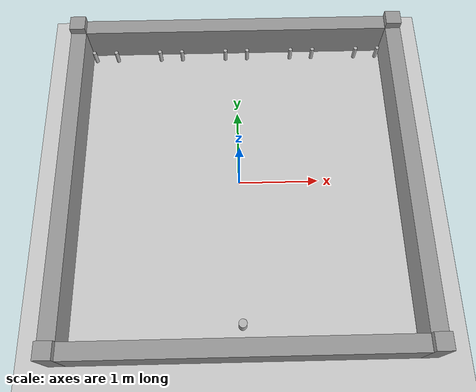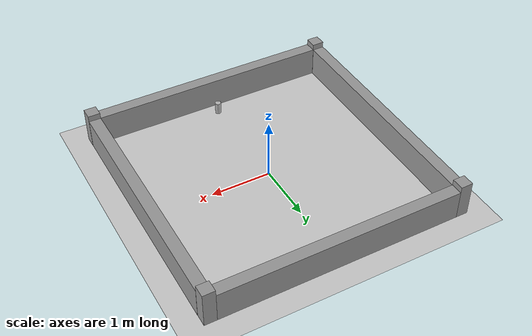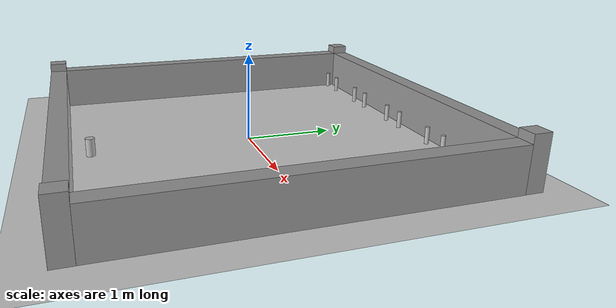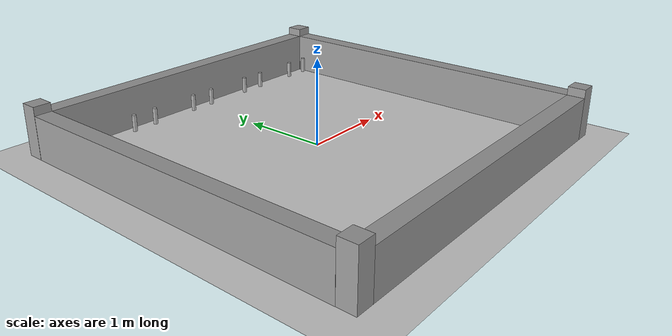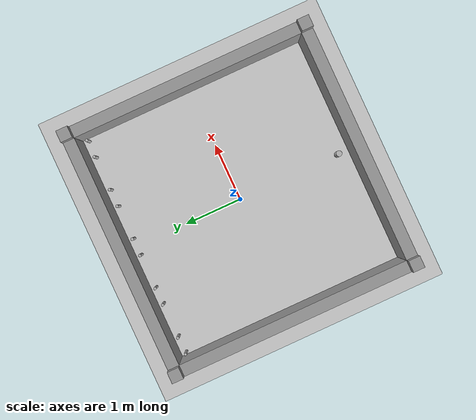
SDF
<?xml version="1.0" ?>

<sdf version="1.5">
	<world name="default">

		<!-- export this: export GAZEBO_MODEL_PATH=~/botler/catkin_ws/src/botler_sim/models/:$GAZEBO_MODEL_PATH
 -->

		<!-- A global light source -->
		<include>
			<uri>model://sun</uri>
			<pose>0 0 0 0 0 0</pose>
		</include>

		<light type="point" name="point">
      <pose>0 0 1 0 0 0</pose>
      <diffuse>1 1 1 1</diffuse>
      <specular>.1 .1 .1 1</specular>
      <attenuation>
        <range>20</range>
        <linear>0.2</linear>
        <constant>0.8</constant>
        <quadratic>0.01</quadratic>
      </attenuation>
      <cast_shadows>false</cast_shadows>
    </light>

		<!-- A ground plane -->
		<include>
			<uri>model://ground_plane</uri>
		</include>

		<include>
			<uri>model://wall</uri>
			<name>positive_y_wall</name>
			<static>true</static>
			<pose>0 2.1 0.25 0 0 0</pose>
		</include>

		<include>
			<uri>model://wall</uri>
			<name>negative_y_wall</name>
			<static>true</static>
			<pose>0 -2.1 0.25 0 0 0</pose>
		</include>

		<include>
			<uri>model://wall</uri>
			<name>positive_x_wall</name>
			<static>true</static>
			<pose>2.1 0 0.25 0 0 1.57</pose>
		</include>

		<include>
			<uri>model://wall</uri>
			<name>negative_x_wall</name>
			<static>true</static>
			<pose>-2.1 0 0.25 0 0 1.57</pose>
		</include>

		<include>
			<uri>model://corner</uri>
			<name>positive_x_positive_y_corner</name>
			<static>true</static>
			<pose>2.1 2.1 0.3 0 0 0</pose>
		</include>

		<include>
			<uri>model://corner</uri>
			<name>positive_x_negative_y_corner</name>
			<static>true</static>
			<pose>2.1 -2.1 0.3 0 0 0</pose>
		</include>

		<include>
			<uri>model://corner</uri>
			<name>negative_x_positive_y_corner</name>
			<static>true</static>
			<pose>-2.1 2.1 0.3 0 0 0</pose>
		</include>

		<include>
			<uri>model://corner</uri>
			<name>negative_x_negative_y_corner</name>
			<static>true</static>
			<pose>-2.1 -2.1 0.3 0 0 0</pose>
		</include>

		<include>
			<uri>model://bottles/beersel_blue</uri>
			<name>test_bottle1_1</name>
			<static>true</static>
			<pose>-1.95 1.9 0 0 0 0</pose>
		</include>

		<include>
			<uri>model://bottles/beersel_red</uri>
			<name>test_bottle_2</name>
			<static>true</static>
			<pose>-1.65 1.9 0 0 0 0</pose>
		</include>

		<include>
			<uri>model://bottles/duvel_blue</uri>
			<name>test_bottle_3</name>
			<static>true</static>
			<pose>-1.05 1.9 0 0 0 0</pose>
		</include>

		<include>
			<uri>model://bottles/duvel_red</uri>
			<name>test_bottle_4</name>
			<static>true</static>
			<pose>-0.75 1.9 0 0 0 0</pose>
		</include>

		<include>
			<uri>model://bottles/gust_blue</uri>
			<name>test_bottle_5</name>
			<static>true</static>
			<pose>1.65 1.9 0 0 0 0</pose>
		</include>

		<include>
			<uri>model://bottles/gust_red</uri>
			<name>test_bottle_6</name>
			<static>true</static>
			<pose>1.95 1.9 0 0 0 0</pose>
		</include>

		<include>
			<uri>model://bottles/hoegaarden_blue</uri>
			<name>test_bottle_9</name>
			<static>true</static>
			<pose>0.75 1.9 0 0 0 0</pose>
		</include>

		<include>
			<uri>model://bottles/hoegaarden_red</uri>
			<name>test_bottle_10</name>
			<static>true</static>
			<pose>1.05 1.9 0 0 0 0</pose>
		</include>

		<include>
			<uri>model://bottles/karmeliet_blue</uri>
			<name>test_bottle_7</name>
			<static>true</static>
			<pose>-0.15 1.9 0 0 0 0</pose>
		</include>

		<include>
			<uri>model://bottles/karmeliet_red</uri>
			<name>test_bottle_8</name>
			<static>true</static>
			<pose>0.15 1.9 0 0 0 0</pose>
		</include>

		<include>
			<uri>model://beer_glasses/hoegaarden</uri>
			<name>test_glass</name>
			<static>true</static>
			<pose>0 -1.8 0 0 0 3.14</pose>
		</include>

	</world>
</sdf>

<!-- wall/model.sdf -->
<sdf version="1.5">
    <model name="wall">
        <static>true</static>
        <link name="link">
            <collision name="collision">
                <geometry>
                    <box>
                        <size>4 0.2 0.5</size>
                    </box>
                </geometry>
            </collision>
            <visual name="visual">
                <geometry>
                    <box>
                        <size>4 0.2 0.5</size>
                    </box>
                </geometry>
                <material>
                    <script>
                        <uri>file://media/materials/scripts/gazebo.material</uri>
                        <name>Gazebo/Grey</name>
                    </script>
                </material>
            </visual>
        </link>
    </model>
</sdf>

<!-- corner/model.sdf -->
<sdf version="1.5">
    <model name="corner">
        <static>true</static>
        <link name="link">
            <collision name="collision">
                <geometry>
                    <box>
                        <size>0.2 0.2 0.6</size>
                    </box>
                </geometry>
            </collision>
            <visual name="visual">
                <geometry>
                    <box>
                        <size>0.2 0.2 0.6</size>
                    </box>
                </geometry>
                <material>
                    <script>
                        <uri>file://media/materials/scripts/gazebo.material</uri>
                        <name>Gazebo/Grey</name>
                    </script>
                </material>
            </visual>
        </link>
    </model>
</sdf>

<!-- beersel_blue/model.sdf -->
<sdf version="1.5">
    <model name="bottle_beersel_blue">
        <static>true</static>
        <link name="link">
            <collision name="collision">
                <geometry>
                    <cylinder>
                        <radius>0.025</radius>
                        <length>0.2</length>
                    </cylinder>
                </geometry>
            </collision>
            <visual name="visual">
                <geometry>
                    <mesh>
                        <uri>model://bottles/beersel_blue/meshes/bottle.dae</uri>
                        <scale>1 1 1</scale>
                    </mesh>
                </geometry>
                <material>
                    <emissive>0.2 0.2 0.2 1</emissive>
                </material>
            </visual>
        </link>
    </model>
</sdf>

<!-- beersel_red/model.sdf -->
<sdf version="1.5">
    <model name="bottle_beersel_red">
        <static>true</static>
        <link name="link">
            <collision name="collision">
                <geometry>
                    <cylinder>
                        <radius>0.025</radius>
                        <length>0.2</length>
                    </cylinder>
                </geometry>
            </collision>
            <visual name="visual">
                <geometry>
                    <mesh>
                        <uri>model://bottles/beersel_red/meshes/bottle.dae</uri>
                        <scale>1 1 1</scale>
                    </mesh>
                </geometry>
                <material>
                    <emissive>0.2 0.2 0.2 1</emissive>
                </material>
            </visual>
        </link>
    </model>
</sdf>

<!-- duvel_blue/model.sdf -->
<sdf version="1.5">
    <model name="bottle_duvel_blue">
        <static>true</static>
        <link name="link">
            <collision name="collision">
                <geometry>
                    <cylinder>
                        <radius>0.025</radius>
                        <length>0.2</length>
                    </cylinder>
                </geometry>
            </collision>
            <visual name="visual">
                <geometry>
                    <mesh>
                        <uri>model://bottles/duvel_blue/meshes/bottle.dae</uri>
                        <scale>1 1 1</scale>
                    </mesh>
                </geometry>
                <material>
                    <emissive>0.2 0.2 0.2 1</emissive>
                </material>
            </visual>
        </link>
    </model>
</sdf>

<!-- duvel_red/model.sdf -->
<sdf version="1.5">
    <model name="bottle_duvel_red">
        <static>true</static>
        <link name="link">
            <collision name="collision">
                <geometry>
                    <cylinder>
                        <radius>0.025</radius>
                        <length>0.2</length>
                    </cylinder>
                </geometry>
            </collision>
            <visual name="visual">
                <geometry>
                    <mesh>
                        <uri>model://bottles/duvel_red/meshes/bottle.dae</uri>
                        <scale>1 1 1</scale>
                    </mesh>
                </geometry>
                <material>
                    <emissive>0.2 0.2 0.2 1</emissive>
                </material>
            </visual>
        </link>
    </model>
</sdf>

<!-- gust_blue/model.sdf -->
<sdf version="1.5">
    <model name="bottle_gust_blue">
        <static>true</static>
        <link name="link">
            <collision name="collision">
                <geometry>
                    <cylinder>
                        <radius>0.025</radius>
                        <length>0.2</length>
                    </cylinder>
                </geometry>
            </collision>
            <visual name="visual">
                <geometry>
                    <mesh>
                        <uri>model://bottles/gust_blue/meshes/bottle.dae</uri>
                        <scale>1 1 1</scale>
                    </mesh>
                </geometry>
                <material>
                    <emissive>0.2 0.2 0.2 1</emissive>
                </material>
            </visual>
        </link>
    </model>
</sdf>

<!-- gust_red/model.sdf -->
<sdf version="1.5">
    <model name="bottle_gust_red">
        <static>true</static>
        <link name="link">
            <collision name="collision">
                <geometry>
                    <cylinder>
                        <radius>0.025</radius>
                        <length>0.2</length>
                    </cylinder>
                </geometry>
            </collision>
            <visual name="visual">
                <geometry>
                    <mesh>
                        <uri>model://bottles/gust_red/meshes/bottle.dae</uri>
                        <scale>1 1 1</scale>
                    </mesh>
                </geometry>
                <material>
                    <emissive>0.2 0.2 0.2 1</emissive>
                </material>
            </visual>
        </link>
    </model>
</sdf>

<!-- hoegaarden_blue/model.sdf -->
<sdf version="1.5">
    <model name="bottle_hoegaarden_blue">
        <static>true</static>
        <link name="link">
            <collision name="collision">
                <geometry>
                    <cylinder>
                        <radius>0.025</radius>
                        <length>0.2</length>
                    </cylinder>
                </geometry>
            </collision>
            <visual name="visual">
                <geometry>
                    <mesh>
                        <uri>model://bottles/hoegaarden_blue/meshes/bottle.dae</uri>
                        <scale>1 1 1</scale>
                    </mesh>
                </geometry>
                <material>
                    <emissive>0.2 0.2 0.2 1</emissive>
                </material>
            </visual>
        </link>
    </model>
</sdf>

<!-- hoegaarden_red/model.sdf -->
<sdf version="1.5">
    <model name="bottle_gust_blue">
        <static>true</static>
        <link name="link">
            <collision name="collision">
                <geometry>
                    <cylinder>
                        <radius>0.025</radius>
                        <length>0.2</length>
                    </cylinder>
                </geometry>
            </collision>
            <visual name="visual">
                <geometry>
                    <mesh>
                        <uri>model://bottles/hoegaarden_red/meshes/bottle.dae</uri>
                        <scale>1 1 1</scale>
                    </mesh>
                </geometry>
                <material>
                    <emissive>0.2 0.2 0.2 1</emissive>
                </material>
            </visual>
        </link>
    </model>
</sdf>

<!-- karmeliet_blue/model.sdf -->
<sdf version="1.5">
    <model name="bottle_karmeliet_blue">
        <static>true</static>
        <link name="link">
            <collision name="collision">
                <geometry>
                    <cylinder>
                        <radius>0.025</radius>
                        <length>0.2</length>
                    </cylinder>
                </geometry>
            </collision>
            <visual name="visual">
                <geometry>
                    <mesh>
                        <uri>model://bottles/karmeliet_blue/meshes/bottle.dae</uri>
                        <scale>1 1 1</scale>
                    </mesh>
                </geometry>
                <material>
                    <emissive>0.2 0.2 0.2 1</emissive>
                </material>
            </visual>
        </link>
    </model>
</sdf>

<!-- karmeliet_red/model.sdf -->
<sdf version="1.5">
    <model name="bottle_karmeliet_red">
        <static>true</static>
        <link name="link">
            <collision name="collision">
                <geometry>
                    <cylinder>
                        <radius>0.025</radius>
                        <length>0.2</length>
                    </cylinder>
                </geometry>
            </collision>
            <visual name="visual">
                <geometry>
                    <mesh>
                        <uri>model://bottles/karmeliet_red/meshes/bottle.dae</uri>
                        <scale>1 1 1</scale>
                    </mesh>
                </geometry>
                <material>
                    <emissive>0.2 0.2 0.2 1</emissive>
                </material>
            </visual>
        </link>
    </model>
</sdf>

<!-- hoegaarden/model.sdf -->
<sdf version="1.5">
    <model name="beer_glass_hoegaarden">
        <static>true</static>
        <link name="link">
            <collision name="collision">
                <geometry>
                    <cylinder>
                        <radius>0.05</radius>
                        <length>0.2</length>
                    </cylinder>
                </geometry>
            </collision>
            <visual name="visual">
                <geometry>
                    <mesh>
                        <uri>model://beer_glasses/hoegaarden/meshes/beer_glass.dae</uri>
                        <scale>1 1 1</scale>
                    </mesh>
                </geometry>
                <material>
                    <emissive>0.2 0.2 0.2 1</emissive>
                </material>
                <transparency>0</transparency>
            </visual>
        </link>
    </model>
</sdf>
